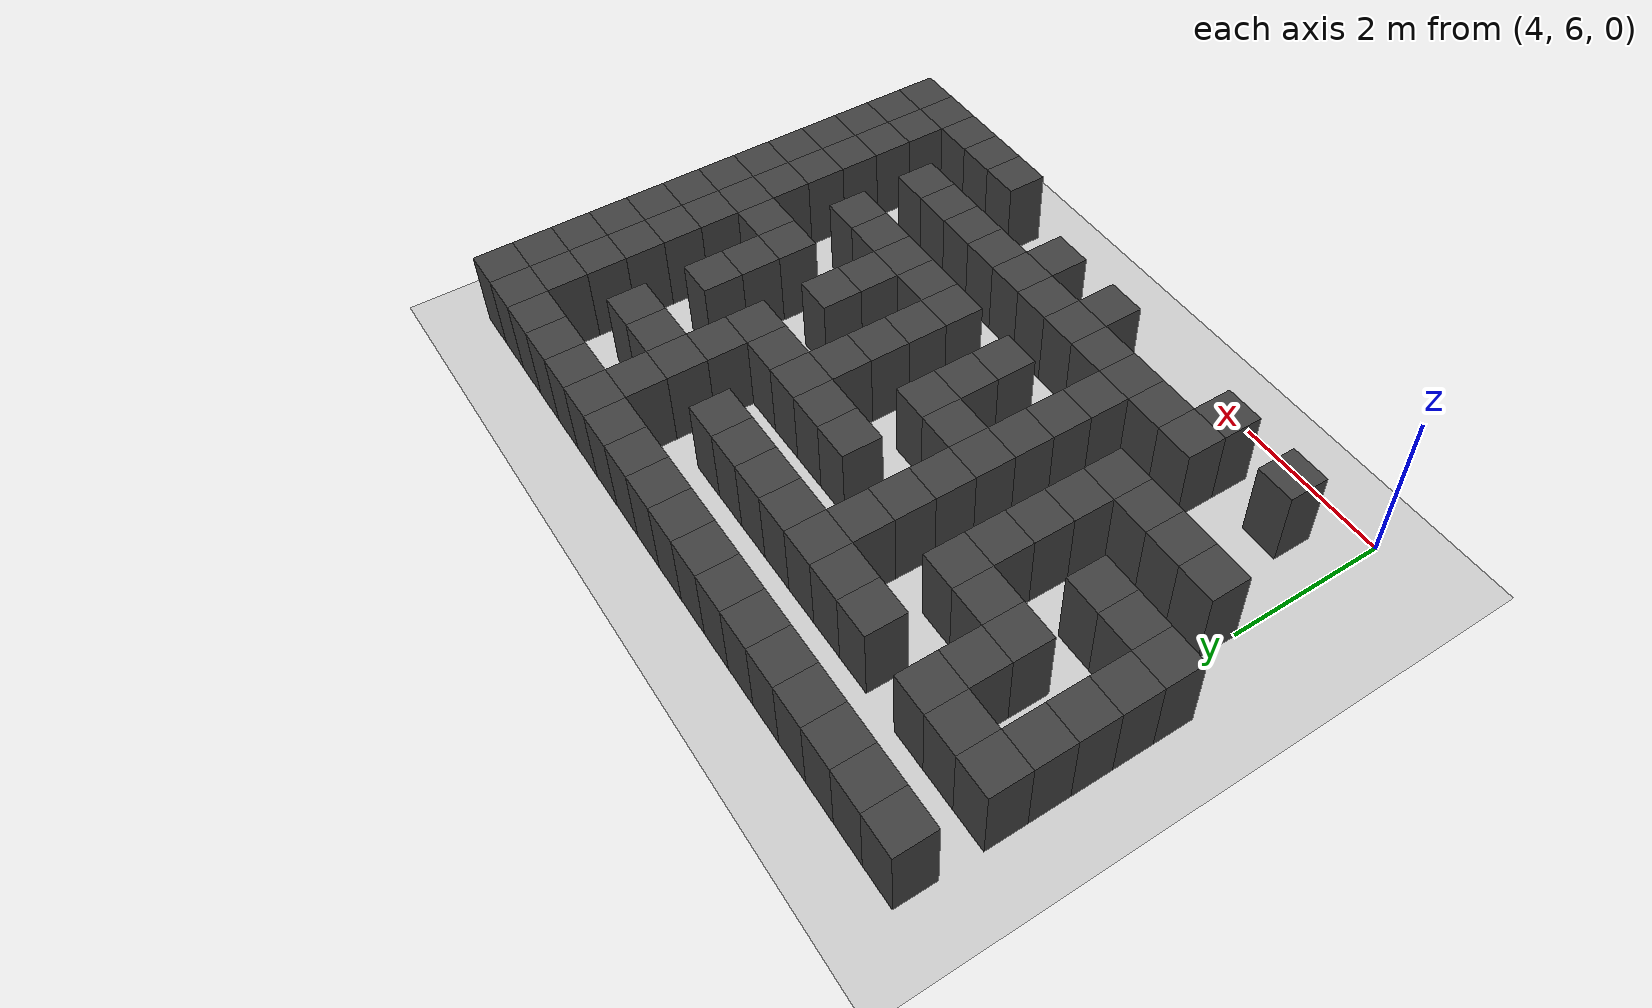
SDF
<sdf version="1.7">
 <world name="map_19815">
  <model name="ground_plane">
   <static>true</static>
   <link name="link">
    <collision name="collision">
     <geometry><plane><normal>0 0 1</normal><size>200 200</size></plane></geometry>
    </collision>
    <visual name="visual">
     <geometry><plane><normal>0 0 1</normal><size>200 200</size></plane></geometry>
     <material><ambient>0.8 0.8 0.8 1</ambient><diffuse>0.8 0.8 0.8 1</diffuse></material>
    </visual>
   </link>
  </model>
  <model name="maze_environment">
   <static>true</static>
   <link name="wall_32">
    <pose>3.750 12.250 0.500 0 0 0</pose>
    <collision name="col"><geometry><box><size>0.5 0.5 1.0</size></box></geometry></collision>
    <visual name="vis">
     <geometry><box><size>0.5 0.5 1.0</size></box></geometry>
     <material><ambient>0.15 0.15 0.15 1</ambient><diffuse>0.25 0.25 0.25 1</diffuse></material>
    </visual>
   </link>
   <link name="wall_33">
    <pose>4.250 12.250 0.500 0 0 0</pose>
    <collision name="col"><geometry><box><size>0.5 0.5 1.0</size></box></geometry></collision>
    <visual name="vis">
     <geometry><box><size>0.5 0.5 1.0</size></box></geometry>
     <material><ambient>0.15 0.15 0.15 1</ambient><diffuse>0.25 0.25 0.25 1</diffuse></material>
    </visual>
   </link>
   <link name="wall_34">
    <pose>4.750 12.250 0.500 0 0 0</pose>
    <collision name="col"><geometry><box><size>0.5 0.5 1.0</size></box></geometry></collision>
    <visual name="vis">
     <geometry><box><size>0.5 0.5 1.0</size></box></geometry>
     <material><ambient>0.15 0.15 0.15 1</ambient><diffuse>0.25 0.25 0.25 1</diffuse></material>
    </visual>
   </link>
   <link name="wall_35">
    <pose>5.250 12.250 0.500 0 0 0</pose>
    <collision name="col"><geometry><box><size>0.5 0.5 1.0</size></box></geometry></collision>
    <visual name="vis">
     <geometry><box><size>0.5 0.5 1.0</size></box></geometry>
     <material><ambient>0.15 0.15 0.15 1</ambient><diffuse>0.25 0.25 0.25 1</diffuse></material>
    </visual>
   </link>
   <link name="wall_36">
    <pose>5.750 12.250 0.500 0 0 0</pose>
    <collision name="col"><geometry><box><size>0.5 0.5 1.0</size></box></geometry></collision>
    <visual name="vis">
     <geometry><box><size>0.5 0.5 1.0</size></box></geometry>
     <material><ambient>0.15 0.15 0.15 1</ambient><diffuse>0.25 0.25 0.25 1</diffuse></material>
    </visual>
   </link>
   <link name="wall_37">
    <pose>6.250 12.250 0.500 0 0 0</pose>
    <collision name="col"><geometry><box><size>0.5 0.5 1.0</size></box></geometry></collision>
    <visual name="vis">
     <geometry><box><size>0.5 0.5 1.0</size></box></geometry>
     <material><ambient>0.15 0.15 0.15 1</ambient><diffuse>0.25 0.25 0.25 1</diffuse></material>
    </visual>
   </link>
   <link name="wall_38">
    <pose>6.750 12.250 0.500 0 0 0</pose>
    <collision name="col"><geometry><box><size>0.5 0.5 1.0</size></box></geometry></collision>
    <visual name="vis">
     <geometry><box><size>0.5 0.5 1.0</size></box></geometry>
     <material><ambient>0.15 0.15 0.15 1</ambient><diffuse>0.25 0.25 0.25 1</diffuse></material>
    </visual>
   </link>
   <link name="wall_39">
    <pose>7.250 12.250 0.500 0 0 0</pose>
    <collision name="col"><geometry><box><size>0.5 0.5 1.0</size></box></geometry></collision>
    <visual name="vis">
     <geometry><box><size>0.5 0.5 1.0</size></box></geometry>
     <material><ambient>0.15 0.15 0.15 1</ambient><diffuse>0.25 0.25 0.25 1</diffuse></material>
    </visual>
   </link>
   <link name="wall_40">
    <pose>7.750 12.250 0.500 0 0 0</pose>
    <collision name="col"><geometry><box><size>0.5 0.5 1.0</size></box></geometry></collision>
    <visual name="vis">
     <geometry><box><size>0.5 0.5 1.0</size></box></geometry>
     <material><ambient>0.15 0.15 0.15 1</ambient><diffuse>0.25 0.25 0.25 1</diffuse></material>
    </visual>
   </link>
   <link name="wall_41">
    <pose>8.250 12.250 0.500 0 0 0</pose>
    <collision name="col"><geometry><box><size>0.5 0.5 1.0</size></box></geometry></collision>
    <visual name="vis">
     <geometry><box><size>0.5 0.5 1.0</size></box></geometry>
     <material><ambient>0.15 0.15 0.15 1</ambient><diffuse>0.25 0.25 0.25 1</diffuse></material>
    </visual>
   </link>
   <link name="wall_42">
    <pose>8.750 12.250 0.500 0 0 0</pose>
    <collision name="col"><geometry><box><size>0.5 0.5 1.0</size></box></geometry></collision>
    <visual name="vis">
     <geometry><box><size>0.5 0.5 1.0</size></box></geometry>
     <material><ambient>0.15 0.15 0.15 1</ambient><diffuse>0.25 0.25 0.25 1</diffuse></material>
    </visual>
   </link>
   <link name="wall_43">
    <pose>9.250 12.250 0.500 0 0 0</pose>
    <collision name="col"><geometry><box><size>0.5 0.5 1.0</size></box></geometry></collision>
    <visual name="vis">
     <geometry><box><size>0.5 0.5 1.0</size></box></geometry>
     <material><ambient>0.15 0.15 0.15 1</ambient><diffuse>0.25 0.25 0.25 1</diffuse></material>
    </visual>
   </link>
   <link name="wall_44">
    <pose>9.750 12.250 0.500 0 0 0</pose>
    <collision name="col"><geometry><box><size>0.5 0.5 1.0</size></box></geometry></collision>
    <visual name="vis">
     <geometry><box><size>0.5 0.5 1.0</size></box></geometry>
     <material><ambient>0.15 0.15 0.15 1</ambient><diffuse>0.25 0.25 0.25 1</diffuse></material>
    </visual>
   </link>
   <link name="wall_45">
    <pose>10.250 12.250 0.500 0 0 0</pose>
    <collision name="col"><geometry><box><size>0.5 0.5 1.0</size></box></geometry></collision>
    <visual name="vis">
     <geometry><box><size>0.5 0.5 1.0</size></box></geometry>
     <material><ambient>0.15 0.15 0.15 1</ambient><diffuse>0.25 0.25 0.25 1</diffuse></material>
    </visual>
   </link>
   <link name="wall_46">
    <pose>10.750 12.250 0.500 0 0 0</pose>
    <collision name="col"><geometry><box><size>0.5 0.5 1.0</size></box></geometry></collision>
    <visual name="vis">
     <geometry><box><size>0.5 0.5 1.0</size></box></geometry>
     <material><ambient>0.15 0.15 0.15 1</ambient><diffuse>0.25 0.25 0.25 1</diffuse></material>
    </visual>
   </link>
   <link name="wall_47">
    <pose>11.250 12.250 0.500 0 0 0</pose>
    <collision name="col"><geometry><box><size>0.5 0.5 1.0</size></box></geometry></collision>
    <visual name="vis">
     <geometry><box><size>0.5 0.5 1.0</size></box></geometry>
     <material><ambient>0.15 0.15 0.15 1</ambient><diffuse>0.25 0.25 0.25 1</diffuse></material>
    </visual>
   </link>
   <link name="wall_48">
    <pose>11.750 12.250 0.500 0 0 0</pose>
    <collision name="col"><geometry><box><size>0.5 0.5 1.0</size></box></geometry></collision>
    <visual name="vis">
     <geometry><box><size>0.5 0.5 1.0</size></box></geometry>
     <material><ambient>0.15 0.15 0.15 1</ambient><diffuse>0.25 0.25 0.25 1</diffuse></material>
    </visual>
   </link>
   <link name="wall_49">
    <pose>12.250 12.250 0.500 0 0 0</pose>
    <collision name="col"><geometry><box><size>0.5 0.5 1.0</size></box></geometry></collision>
    <visual name="vis">
     <geometry><box><size>0.5 0.5 1.0</size></box></geometry>
     <material><ambient>0.15 0.15 0.15 1</ambient><diffuse>0.25 0.25 0.25 1</diffuse></material>
    </visual>
   </link>
   <link name="wall_57">
    <pose>9.750 11.750 0.500 0 0 0</pose>
    <collision name="col"><geometry><box><size>0.5 0.5 1.0</size></box></geometry></collision>
    <visual name="vis">
     <geometry><box><size>0.5 0.5 1.0</size></box></geometry>
     <material><ambient>0.15 0.15 0.15 1</ambient><diffuse>0.25 0.25 0.25 1</diffuse></material>
    </visual>
   </link>
   <link name="wall_58">
    <pose>11.750 11.750 0.500 0 0 0</pose>
    <collision name="col"><geometry><box><size>0.5 0.5 1.0</size></box></geometry></collision>
    <visual name="vis">
     <geometry><box><size>0.5 0.5 1.0</size></box></geometry>
     <material><ambient>0.15 0.15 0.15 1</ambient><diffuse>0.25 0.25 0.25 1</diffuse></material>
    </visual>
   </link>
   <link name="wall_59">
    <pose>12.250 11.750 0.500 0 0 0</pose>
    <collision name="col"><geometry><box><size>0.5 0.5 1.0</size></box></geometry></collision>
    <visual name="vis">
     <geometry><box><size>0.5 0.5 1.0</size></box></geometry>
     <material><ambient>0.15 0.15 0.15 1</ambient><diffuse>0.25 0.25 0.25 1</diffuse></material>
    </visual>
   </link>
   <link name="wall_79">
    <pose>3.750 11.250 0.500 0 0 0</pose>
    <collision name="col"><geometry><box><size>0.5 0.5 1.0</size></box></geometry></collision>
    <visual name="vis">
     <geometry><box><size>0.5 0.5 1.0</size></box></geometry>
     <material><ambient>0.15 0.15 0.15 1</ambient><diffuse>0.25 0.25 0.25 1</diffuse></material>
    </visual>
   </link>
   <link name="wall_80">
    <pose>4.250 11.250 0.500 0 0 0</pose>
    <collision name="col"><geometry><box><size>0.5 0.5 1.0</size></box></geometry></collision>
    <visual name="vis">
     <geometry><box><size>0.5 0.5 1.0</size></box></geometry>
     <material><ambient>0.15 0.15 0.15 1</ambient><diffuse>0.25 0.25 0.25 1</diffuse></material>
    </visual>
   </link>
   <link name="wall_81">
    <pose>4.750 11.250 0.500 0 0 0</pose>
    <collision name="col"><geometry><box><size>0.5 0.5 1.0</size></box></geometry></collision>
    <visual name="vis">
     <geometry><box><size>0.5 0.5 1.0</size></box></geometry>
     <material><ambient>0.15 0.15 0.15 1</ambient><diffuse>0.25 0.25 0.25 1</diffuse></material>
    </visual>
   </link>
   <link name="wall_82">
    <pose>5.750 11.250 0.500 0 0 0</pose>
    <collision name="col"><geometry><box><size>0.5 0.5 1.0</size></box></geometry></collision>
    <visual name="vis">
     <geometry><box><size>0.5 0.5 1.0</size></box></geometry>
     <material><ambient>0.15 0.15 0.15 1</ambient><diffuse>0.25 0.25 0.25 1</diffuse></material>
    </visual>
   </link>
   <link name="wall_83">
    <pose>6.250 11.250 0.500 0 0 0</pose>
    <collision name="col"><geometry><box><size>0.5 0.5 1.0</size></box></geometry></collision>
    <visual name="vis">
     <geometry><box><size>0.5 0.5 1.0</size></box></geometry>
     <material><ambient>0.15 0.15 0.15 1</ambient><diffuse>0.25 0.25 0.25 1</diffuse></material>
    </visual>
   </link>
   <link name="wall_84">
    <pose>6.750 11.250 0.500 0 0 0</pose>
    <collision name="col"><geometry><box><size>0.5 0.5 1.0</size></box></geometry></collision>
    <visual name="vis">
     <geometry><box><size>0.5 0.5 1.0</size></box></geometry>
     <material><ambient>0.15 0.15 0.15 1</ambient><diffuse>0.25 0.25 0.25 1</diffuse></material>
    </visual>
   </link>
   <link name="wall_85">
    <pose>7.250 11.250 0.500 0 0 0</pose>
    <collision name="col"><geometry><box><size>0.5 0.5 1.0</size></box></geometry></collision>
    <visual name="vis">
     <geometry><box><size>0.5 0.5 1.0</size></box></geometry>
     <material><ambient>0.15 0.15 0.15 1</ambient><diffuse>0.25 0.25 0.25 1</diffuse></material>
    </visual>
   </link>
   <link name="wall_86">
    <pose>7.750 11.250 0.500 0 0 0</pose>
    <collision name="col"><geometry><box><size>0.5 0.5 1.0</size></box></geometry></collision>
    <visual name="vis">
     <geometry><box><size>0.5 0.5 1.0</size></box></geometry>
     <material><ambient>0.15 0.15 0.15 1</ambient><diffuse>0.25 0.25 0.25 1</diffuse></material>
    </visual>
   </link>
   <link name="wall_87">
    <pose>8.250 11.250 0.500 0 0 0</pose>
    <collision name="col"><geometry><box><size>0.5 0.5 1.0</size></box></geometry></collision>
    <visual name="vis">
     <geometry><box><size>0.5 0.5 1.0</size></box></geometry>
     <material><ambient>0.15 0.15 0.15 1</ambient><diffuse>0.25 0.25 0.25 1</diffuse></material>
    </visual>
   </link>
   <link name="wall_88">
    <pose>8.750 11.250 0.500 0 0 0</pose>
    <collision name="col"><geometry><box><size>0.5 0.5 1.0</size></box></geometry></collision>
    <visual name="vis">
     <geometry><box><size>0.5 0.5 1.0</size></box></geometry>
     <material><ambient>0.15 0.15 0.15 1</ambient><diffuse>0.25 0.25 0.25 1</diffuse></material>
    </visual>
   </link>
   <link name="wall_89">
    <pose>9.750 11.250 0.500 0 0 0</pose>
    <collision name="col"><geometry><box><size>0.5 0.5 1.0</size></box></geometry></collision>
    <visual name="vis">
     <geometry><box><size>0.5 0.5 1.0</size></box></geometry>
     <material><ambient>0.15 0.15 0.15 1</ambient><diffuse>0.25 0.25 0.25 1</diffuse></material>
    </visual>
   </link>
   <link name="wall_90">
    <pose>10.250 11.250 0.500 0 0 0</pose>
    <collision name="col"><geometry><box><size>0.5 0.5 1.0</size></box></geometry></collision>
    <visual name="vis">
     <geometry><box><size>0.5 0.5 1.0</size></box></geometry>
     <material><ambient>0.15 0.15 0.15 1</ambient><diffuse>0.25 0.25 0.25 1</diffuse></material>
    </visual>
   </link>
   <link name="wall_91">
    <pose>10.750 11.250 0.500 0 0 0</pose>
    <collision name="col"><geometry><box><size>0.5 0.5 1.0</size></box></geometry></collision>
    <visual name="vis">
     <geometry><box><size>0.5 0.5 1.0</size></box></geometry>
     <material><ambient>0.15 0.15 0.15 1</ambient><diffuse>0.25 0.25 0.25 1</diffuse></material>
    </visual>
   </link>
   <link name="wall_92">
    <pose>11.750 11.250 0.500 0 0 0</pose>
    <collision name="col"><geometry><box><size>0.5 0.5 1.0</size></box></geometry></collision>
    <visual name="vis">
     <geometry><box><size>0.5 0.5 1.0</size></box></geometry>
     <material><ambient>0.15 0.15 0.15 1</ambient><diffuse>0.25 0.25 0.25 1</diffuse></material>
    </visual>
   </link>
   <link name="wall_93">
    <pose>12.250 11.250 0.500 0 0 0</pose>
    <collision name="col"><geometry><box><size>0.5 0.5 1.0</size></box></geometry></collision>
    <visual name="vis">
     <geometry><box><size>0.5 0.5 1.0</size></box></geometry>
     <material><ambient>0.15 0.15 0.15 1</ambient><diffuse>0.25 0.25 0.25 1</diffuse></material>
    </visual>
   </link>
   <link name="wall_105">
    <pose>3.750 10.750 0.500 0 0 0</pose>
    <collision name="col"><geometry><box><size>0.5 0.5 1.0</size></box></geometry></collision>
    <visual name="vis">
     <geometry><box><size>0.5 0.5 1.0</size></box></geometry>
     <material><ambient>0.15 0.15 0.15 1</ambient><diffuse>0.25 0.25 0.25 1</diffuse></material>
    </visual>
   </link>
   <link name="wall_106">
    <pose>4.750 10.750 0.500 0 0 0</pose>
    <collision name="col"><geometry><box><size>0.5 0.5 1.0</size></box></geometry></collision>
    <visual name="vis">
     <geometry><box><size>0.5 0.5 1.0</size></box></geometry>
     <material><ambient>0.15 0.15 0.15 1</ambient><diffuse>0.25 0.25 0.25 1</diffuse></material>
    </visual>
   </link>
   <link name="wall_107">
    <pose>6.750 10.750 0.500 0 0 0</pose>
    <collision name="col"><geometry><box><size>0.5 0.5 1.0</size></box></geometry></collision>
    <visual name="vis">
     <geometry><box><size>0.5 0.5 1.0</size></box></geometry>
     <material><ambient>0.15 0.15 0.15 1</ambient><diffuse>0.25 0.25 0.25 1</diffuse></material>
    </visual>
   </link>
   <link name="wall_108">
    <pose>9.750 10.750 0.500 0 0 0</pose>
    <collision name="col"><geometry><box><size>0.5 0.5 1.0</size></box></geometry></collision>
    <visual name="vis">
     <geometry><box><size>0.5 0.5 1.0</size></box></geometry>
     <material><ambient>0.15 0.15 0.15 1</ambient><diffuse>0.25 0.25 0.25 1</diffuse></material>
    </visual>
   </link>
   <link name="wall_109">
    <pose>11.750 10.750 0.500 0 0 0</pose>
    <collision name="col"><geometry><box><size>0.5 0.5 1.0</size></box></geometry></collision>
    <visual name="vis">
     <geometry><box><size>0.5 0.5 1.0</size></box></geometry>
     <material><ambient>0.15 0.15 0.15 1</ambient><diffuse>0.25 0.25 0.25 1</diffuse></material>
    </visual>
   </link>
   <link name="wall_110">
    <pose>12.250 10.750 0.500 0 0 0</pose>
    <collision name="col"><geometry><box><size>0.5 0.5 1.0</size></box></geometry></collision>
    <visual name="vis">
     <geometry><box><size>0.5 0.5 1.0</size></box></geometry>
     <material><ambient>0.15 0.15 0.15 1</ambient><diffuse>0.25 0.25 0.25 1</diffuse></material>
    </visual>
   </link>
   <link name="wall_133">
    <pose>3.750 10.250 0.500 0 0 0</pose>
    <collision name="col"><geometry><box><size>0.5 0.5 1.0</size></box></geometry></collision>
    <visual name="vis">
     <geometry><box><size>0.5 0.5 1.0</size></box></geometry>
     <material><ambient>0.15 0.15 0.15 1</ambient><diffuse>0.25 0.25 0.25 1</diffuse></material>
    </visual>
   </link>
   <link name="wall_134">
    <pose>4.750 10.250 0.500 0 0 0</pose>
    <collision name="col"><geometry><box><size>0.5 0.5 1.0</size></box></geometry></collision>
    <visual name="vis">
     <geometry><box><size>0.5 0.5 1.0</size></box></geometry>
     <material><ambient>0.15 0.15 0.15 1</ambient><diffuse>0.25 0.25 0.25 1</diffuse></material>
    </visual>
   </link>
   <link name="wall_135">
    <pose>5.250 10.250 0.500 0 0 0</pose>
    <collision name="col"><geometry><box><size>0.5 0.5 1.0</size></box></geometry></collision>
    <visual name="vis">
     <geometry><box><size>0.5 0.5 1.0</size></box></geometry>
     <material><ambient>0.15 0.15 0.15 1</ambient><diffuse>0.25 0.25 0.25 1</diffuse></material>
    </visual>
   </link>
   <link name="wall_136">
    <pose>5.750 10.250 0.500 0 0 0</pose>
    <collision name="col"><geometry><box><size>0.5 0.5 1.0</size></box></geometry></collision>
    <visual name="vis">
     <geometry><box><size>0.5 0.5 1.0</size></box></geometry>
     <material><ambient>0.15 0.15 0.15 1</ambient><diffuse>0.25 0.25 0.25 1</diffuse></material>
    </visual>
   </link>
   <link name="wall_137">
    <pose>6.750 10.250 0.500 0 0 0</pose>
    <collision name="col"><geometry><box><size>0.5 0.5 1.0</size></box></geometry></collision>
    <visual name="vis">
     <geometry><box><size>0.5 0.5 1.0</size></box></geometry>
     <material><ambient>0.15 0.15 0.15 1</ambient><diffuse>0.25 0.25 0.25 1</diffuse></material>
    </visual>
   </link>
   <link name="wall_138">
    <pose>7.750 10.250 0.500 0 0 0</pose>
    <collision name="col"><geometry><box><size>0.5 0.5 1.0</size></box></geometry></collision>
    <visual name="vis">
     <geometry><box><size>0.5 0.5 1.0</size></box></geometry>
     <material><ambient>0.15 0.15 0.15 1</ambient><diffuse>0.25 0.25 0.25 1</diffuse></material>
    </visual>
   </link>
   <link name="wall_139">
    <pose>8.250 10.250 0.500 0 0 0</pose>
    <collision name="col"><geometry><box><size>0.5 0.5 1.0</size></box></geometry></collision>
    <visual name="vis">
     <geometry><box><size>0.5 0.5 1.0</size></box></geometry>
     <material><ambient>0.15 0.15 0.15 1</ambient><diffuse>0.25 0.25 0.25 1</diffuse></material>
    </visual>
   </link>
   <link name="wall_140">
    <pose>8.750 10.250 0.500 0 0 0</pose>
    <collision name="col"><geometry><box><size>0.5 0.5 1.0</size></box></geometry></collision>
    <visual name="vis">
     <geometry><box><size>0.5 0.5 1.0</size></box></geometry>
     <material><ambient>0.15 0.15 0.15 1</ambient><diffuse>0.25 0.25 0.25 1</diffuse></material>
    </visual>
   </link>
   <link name="wall_141">
    <pose>9.250 10.250 0.500 0 0 0</pose>
    <collision name="col"><geometry><box><size>0.5 0.5 1.0</size></box></geometry></collision>
    <visual name="vis">
     <geometry><box><size>0.5 0.5 1.0</size></box></geometry>
     <material><ambient>0.15 0.15 0.15 1</ambient><diffuse>0.25 0.25 0.25 1</diffuse></material>
    </visual>
   </link>
   <link name="wall_142">
    <pose>9.750 10.250 0.500 0 0 0</pose>
    <collision name="col"><geometry><box><size>0.5 0.5 1.0</size></box></geometry></collision>
    <visual name="vis">
     <geometry><box><size>0.5 0.5 1.0</size></box></geometry>
     <material><ambient>0.15 0.15 0.15 1</ambient><diffuse>0.25 0.25 0.25 1</diffuse></material>
    </visual>
   </link>
   <link name="wall_143">
    <pose>10.750 10.250 0.500 0 0 0</pose>
    <collision name="col"><geometry><box><size>0.5 0.5 1.0</size></box></geometry></collision>
    <visual name="vis">
     <geometry><box><size>0.5 0.5 1.0</size></box></geometry>
     <material><ambient>0.15 0.15 0.15 1</ambient><diffuse>0.25 0.25 0.25 1</diffuse></material>
    </visual>
   </link>
   <link name="wall_144">
    <pose>11.750 10.250 0.500 0 0 0</pose>
    <collision name="col"><geometry><box><size>0.5 0.5 1.0</size></box></geometry></collision>
    <visual name="vis">
     <geometry><box><size>0.5 0.5 1.0</size></box></geometry>
     <material><ambient>0.15 0.15 0.15 1</ambient><diffuse>0.25 0.25 0.25 1</diffuse></material>
    </visual>
   </link>
   <link name="wall_145">
    <pose>12.250 10.250 0.500 0 0 0</pose>
    <collision name="col"><geometry><box><size>0.5 0.5 1.0</size></box></geometry></collision>
    <visual name="vis">
     <geometry><box><size>0.5 0.5 1.0</size></box></geometry>
     <material><ambient>0.15 0.15 0.15 1</ambient><diffuse>0.25 0.25 0.25 1</diffuse></material>
    </visual>
   </link>
   <link name="wall_154">
    <pose>3.750 9.750 0.500 0 0 0</pose>
    <collision name="col"><geometry><box><size>0.5 0.5 1.0</size></box></geometry></collision>
    <visual name="vis">
     <geometry><box><size>0.5 0.5 1.0</size></box></geometry>
     <material><ambient>0.15 0.15 0.15 1</ambient><diffuse>0.25 0.25 0.25 1</diffuse></material>
    </visual>
   </link>
   <link name="wall_155">
    <pose>5.750 9.750 0.500 0 0 0</pose>
    <collision name="col"><geometry><box><size>0.5 0.5 1.0</size></box></geometry></collision>
    <visual name="vis">
     <geometry><box><size>0.5 0.5 1.0</size></box></geometry>
     <material><ambient>0.15 0.15 0.15 1</ambient><diffuse>0.25 0.25 0.25 1</diffuse></material>
    </visual>
   </link>
   <link name="wall_156">
    <pose>6.750 9.750 0.500 0 0 0</pose>
    <collision name="col"><geometry><box><size>0.5 0.5 1.0</size></box></geometry></collision>
    <visual name="vis">
     <geometry><box><size>0.5 0.5 1.0</size></box></geometry>
     <material><ambient>0.15 0.15 0.15 1</ambient><diffuse>0.25 0.25 0.25 1</diffuse></material>
    </visual>
   </link>
   <link name="wall_157">
    <pose>8.750 9.750 0.500 0 0 0</pose>
    <collision name="col"><geometry><box><size>0.5 0.5 1.0</size></box></geometry></collision>
    <visual name="vis">
     <geometry><box><size>0.5 0.5 1.0</size></box></geometry>
     <material><ambient>0.15 0.15 0.15 1</ambient><diffuse>0.25 0.25 0.25 1</diffuse></material>
    </visual>
   </link>
   <link name="wall_158">
    <pose>10.750 9.750 0.500 0 0 0</pose>
    <collision name="col"><geometry><box><size>0.5 0.5 1.0</size></box></geometry></collision>
    <visual name="vis">
     <geometry><box><size>0.5 0.5 1.0</size></box></geometry>
     <material><ambient>0.15 0.15 0.15 1</ambient><diffuse>0.25 0.25 0.25 1</diffuse></material>
    </visual>
   </link>
   <link name="wall_159">
    <pose>11.750 9.750 0.500 0 0 0</pose>
    <collision name="col"><geometry><box><size>0.5 0.5 1.0</size></box></geometry></collision>
    <visual name="vis">
     <geometry><box><size>0.5 0.5 1.0</size></box></geometry>
     <material><ambient>0.15 0.15 0.15 1</ambient><diffuse>0.25 0.25 0.25 1</diffuse></material>
    </visual>
   </link>
   <link name="wall_160">
    <pose>12.250 9.750 0.500 0 0 0</pose>
    <collision name="col"><geometry><box><size>0.5 0.5 1.0</size></box></geometry></collision>
    <visual name="vis">
     <geometry><box><size>0.5 0.5 1.0</size></box></geometry>
     <material><ambient>0.15 0.15 0.15 1</ambient><diffuse>0.25 0.25 0.25 1</diffuse></material>
    </visual>
   </link>
   <link name="wall_187">
    <pose>3.750 9.250 0.500 0 0 0</pose>
    <collision name="col"><geometry><box><size>0.5 0.5 1.0</size></box></geometry></collision>
    <visual name="vis">
     <geometry><box><size>0.5 0.5 1.0</size></box></geometry>
     <material><ambient>0.15 0.15 0.15 1</ambient><diffuse>0.25 0.25 0.25 1</diffuse></material>
    </visual>
   </link>
   <link name="wall_188">
    <pose>4.250 9.250 0.500 0 0 0</pose>
    <collision name="col"><geometry><box><size>0.5 0.5 1.0</size></box></geometry></collision>
    <visual name="vis">
     <geometry><box><size>0.5 0.5 1.0</size></box></geometry>
     <material><ambient>0.15 0.15 0.15 1</ambient><diffuse>0.25 0.25 0.25 1</diffuse></material>
    </visual>
   </link>
   <link name="wall_189">
    <pose>4.750 9.250 0.500 0 0 0</pose>
    <collision name="col"><geometry><box><size>0.5 0.5 1.0</size></box></geometry></collision>
    <visual name="vis">
     <geometry><box><size>0.5 0.5 1.0</size></box></geometry>
     <material><ambient>0.15 0.15 0.15 1</ambient><diffuse>0.25 0.25 0.25 1</diffuse></material>
    </visual>
   </link>
   <link name="wall_190">
    <pose>5.750 9.250 0.500 0 0 0</pose>
    <collision name="col"><geometry><box><size>0.5 0.5 1.0</size></box></geometry></collision>
    <visual name="vis">
     <geometry><box><size>0.5 0.5 1.0</size></box></geometry>
     <material><ambient>0.15 0.15 0.15 1</ambient><diffuse>0.25 0.25 0.25 1</diffuse></material>
    </visual>
   </link>
   <link name="wall_191">
    <pose>6.750 9.250 0.500 0 0 0</pose>
    <collision name="col"><geometry><box><size>0.5 0.5 1.0</size></box></geometry></collision>
    <visual name="vis">
     <geometry><box><size>0.5 0.5 1.0</size></box></geometry>
     <material><ambient>0.15 0.15 0.15 1</ambient><diffuse>0.25 0.25 0.25 1</diffuse></material>
    </visual>
   </link>
   <link name="wall_192">
    <pose>7.250 9.250 0.500 0 0 0</pose>
    <collision name="col"><geometry><box><size>0.5 0.5 1.0</size></box></geometry></collision>
    <visual name="vis">
     <geometry><box><size>0.5 0.5 1.0</size></box></geometry>
     <material><ambient>0.15 0.15 0.15 1</ambient><diffuse>0.25 0.25 0.25 1</diffuse></material>
    </visual>
   </link>
   <link name="wall_193">
    <pose>7.750 9.250 0.500 0 0 0</pose>
    <collision name="col"><geometry><box><size>0.5 0.5 1.0</size></box></geometry></collision>
    <visual name="vis">
     <geometry><box><size>0.5 0.5 1.0</size></box></geometry>
     <material><ambient>0.15 0.15 0.15 1</ambient><diffuse>0.25 0.25 0.25 1</diffuse></material>
    </visual>
   </link>
   <link name="wall_194">
    <pose>8.750 9.250 0.500 0 0 0</pose>
    <collision name="col"><geometry><box><size>0.5 0.5 1.0</size></box></geometry></collision>
    <visual name="vis">
     <geometry><box><size>0.5 0.5 1.0</size></box></geometry>
     <material><ambient>0.15 0.15 0.15 1</ambient><diffuse>0.25 0.25 0.25 1</diffuse></material>
    </visual>
   </link>
   <link name="wall_195">
    <pose>9.750 9.250 0.500 0 0 0</pose>
    <collision name="col"><geometry><box><size>0.5 0.5 1.0</size></box></geometry></collision>
    <visual name="vis">
     <geometry><box><size>0.5 0.5 1.0</size></box></geometry>
     <material><ambient>0.15 0.15 0.15 1</ambient><diffuse>0.25 0.25 0.25 1</diffuse></material>
    </visual>
   </link>
   <link name="wall_196">
    <pose>10.750 9.250 0.500 0 0 0</pose>
    <collision name="col"><geometry><box><size>0.5 0.5 1.0</size></box></geometry></collision>
    <visual name="vis">
     <geometry><box><size>0.5 0.5 1.0</size></box></geometry>
     <material><ambient>0.15 0.15 0.15 1</ambient><diffuse>0.25 0.25 0.25 1</diffuse></material>
    </visual>
   </link>
   <link name="wall_197">
    <pose>11.250 9.250 0.500 0 0 0</pose>
    <collision name="col"><geometry><box><size>0.5 0.5 1.0</size></box></geometry></collision>
    <visual name="vis">
     <geometry><box><size>0.5 0.5 1.0</size></box></geometry>
     <material><ambient>0.15 0.15 0.15 1</ambient><diffuse>0.25 0.25 0.25 1</diffuse></material>
    </visual>
   </link>
   <link name="wall_198">
    <pose>11.750 9.250 0.500 0 0 0</pose>
    <collision name="col"><geometry><box><size>0.5 0.5 1.0</size></box></geometry></collision>
    <visual name="vis">
     <geometry><box><size>0.5 0.5 1.0</size></box></geometry>
     <material><ambient>0.15 0.15 0.15 1</ambient><diffuse>0.25 0.25 0.25 1</diffuse></material>
    </visual>
   </link>
   <link name="wall_199">
    <pose>12.250 9.250 0.500 0 0 0</pose>
    <collision name="col"><geometry><box><size>0.5 0.5 1.0</size></box></geometry></collision>
    <visual name="vis">
     <geometry><box><size>0.5 0.5 1.0</size></box></geometry>
     <material><ambient>0.15 0.15 0.15 1</ambient><diffuse>0.25 0.25 0.25 1</diffuse></material>
    </visual>
   </link>
   <link name="wall_210">
    <pose>5.750 8.750 0.500 0 0 0</pose>
    <collision name="col"><geometry><box><size>0.5 0.5 1.0</size></box></geometry></collision>
    <visual name="vis">
     <geometry><box><size>0.5 0.5 1.0</size></box></geometry>
     <material><ambient>0.15 0.15 0.15 1</ambient><diffuse>0.25 0.25 0.25 1</diffuse></material>
    </visual>
   </link>
   <link name="wall_211">
    <pose>6.750 8.750 0.500 0 0 0</pose>
    <collision name="col"><geometry><box><size>0.5 0.5 1.0</size></box></geometry></collision>
    <visual name="vis">
     <geometry><box><size>0.5 0.5 1.0</size></box></geometry>
     <material><ambient>0.15 0.15 0.15 1</ambient><diffuse>0.25 0.25 0.25 1</diffuse></material>
    </visual>
   </link>
   <link name="wall_212">
    <pose>7.750 8.750 0.500 0 0 0</pose>
    <collision name="col"><geometry><box><size>0.5 0.5 1.0</size></box></geometry></collision>
    <visual name="vis">
     <geometry><box><size>0.5 0.5 1.0</size></box></geometry>
     <material><ambient>0.15 0.15 0.15 1</ambient><diffuse>0.25 0.25 0.25 1</diffuse></material>
    </visual>
   </link>
   <link name="wall_213">
    <pose>8.750 8.750 0.500 0 0 0</pose>
    <collision name="col"><geometry><box><size>0.5 0.5 1.0</size></box></geometry></collision>
    <visual name="vis">
     <geometry><box><size>0.5 0.5 1.0</size></box></geometry>
     <material><ambient>0.15 0.15 0.15 1</ambient><diffuse>0.25 0.25 0.25 1</diffuse></material>
    </visual>
   </link>
   <link name="wall_214">
    <pose>9.750 8.750 0.500 0 0 0</pose>
    <collision name="col"><geometry><box><size>0.5 0.5 1.0</size></box></geometry></collision>
    <visual name="vis">
     <geometry><box><size>0.5 0.5 1.0</size></box></geometry>
     <material><ambient>0.15 0.15 0.15 1</ambient><diffuse>0.25 0.25 0.25 1</diffuse></material>
    </visual>
   </link>
   <link name="wall_215">
    <pose>11.750 8.750 0.500 0 0 0</pose>
    <collision name="col"><geometry><box><size>0.5 0.5 1.0</size></box></geometry></collision>
    <visual name="vis">
     <geometry><box><size>0.5 0.5 1.0</size></box></geometry>
     <material><ambient>0.15 0.15 0.15 1</ambient><diffuse>0.25 0.25 0.25 1</diffuse></material>
    </visual>
   </link>
   <link name="wall_216">
    <pose>12.250 8.750 0.500 0 0 0</pose>
    <collision name="col"><geometry><box><size>0.5 0.5 1.0</size></box></geometry></collision>
    <visual name="vis">
     <geometry><box><size>0.5 0.5 1.0</size></box></geometry>
     <material><ambient>0.15 0.15 0.15 1</ambient><diffuse>0.25 0.25 0.25 1</diffuse></material>
    </visual>
   </link>
   <link name="wall_238">
    <pose>4.250 8.250 0.500 0 0 0</pose>
    <collision name="col"><geometry><box><size>0.5 0.5 1.0</size></box></geometry></collision>
    <visual name="vis">
     <geometry><box><size>0.5 0.5 1.0</size></box></geometry>
     <material><ambient>0.15 0.15 0.15 1</ambient><diffuse>0.25 0.25 0.25 1</diffuse></material>
    </visual>
   </link>
   <link name="wall_239">
    <pose>4.750 8.250 0.500 0 0 0</pose>
    <collision name="col"><geometry><box><size>0.5 0.5 1.0</size></box></geometry></collision>
    <visual name="vis">
     <geometry><box><size>0.5 0.5 1.0</size></box></geometry>
     <material><ambient>0.15 0.15 0.15 1</ambient><diffuse>0.25 0.25 0.25 1</diffuse></material>
    </visual>
   </link>
   <link name="wall_240">
    <pose>5.250 8.250 0.500 0 0 0</pose>
    <collision name="col"><geometry><box><size>0.5 0.5 1.0</size></box></geometry></collision>
    <visual name="vis">
     <geometry><box><size>0.5 0.5 1.0</size></box></geometry>
     <material><ambient>0.15 0.15 0.15 1</ambient><diffuse>0.25 0.25 0.25 1</diffuse></material>
    </visual>
   </link>
   <link name="wall_241">
    <pose>5.750 8.250 0.500 0 0 0</pose>
    <collision name="col"><geometry><box><size>0.5 0.5 1.0</size></box></geometry></collision>
    <visual name="vis">
     <geometry><box><size>0.5 0.5 1.0</size></box></geometry>
     <material><ambient>0.15 0.15 0.15 1</ambient><diffuse>0.25 0.25 0.25 1</diffuse></material>
    </visual>
   </link>
   <link name="wall_242">
    <pose>6.750 8.250 0.500 0 0 0</pose>
    <collision name="col"><geometry><box><size>0.5 0.5 1.0</size></box></geometry></collision>
    <visual name="vis">
     <geometry><box><size>0.5 0.5 1.0</size></box></geometry>
     <material><ambient>0.15 0.15 0.15 1</ambient><diffuse>0.25 0.25 0.25 1</diffuse></material>
    </visual>
   </link>
   <link name="wall_243">
    <pose>7.750 8.250 0.500 0 0 0</pose>
    <collision name="col"><geometry><box><size>0.5 0.5 1.0</size></box></geometry></collision>
    <visual name="vis">
     <geometry><box><size>0.5 0.5 1.0</size></box></geometry>
     <material><ambient>0.15 0.15 0.15 1</ambient><diffuse>0.25 0.25 0.25 1</diffuse></material>
    </visual>
   </link>
   <link name="wall_244">
    <pose>8.750 8.250 0.500 0 0 0</pose>
    <collision name="col"><geometry><box><size>0.5 0.5 1.0</size></box></geometry></collision>
    <visual name="vis">
     <geometry><box><size>0.5 0.5 1.0</size></box></geometry>
     <material><ambient>0.15 0.15 0.15 1</ambient><diffuse>0.25 0.25 0.25 1</diffuse></material>
    </visual>
   </link>
   <link name="wall_245">
    <pose>9.250 8.250 0.500 0 0 0</pose>
    <collision name="col"><geometry><box><size>0.5 0.5 1.0</size></box></geometry></collision>
    <visual name="vis">
     <geometry><box><size>0.5 0.5 1.0</size></box></geometry>
     <material><ambient>0.15 0.15 0.15 1</ambient><diffuse>0.25 0.25 0.25 1</diffuse></material>
    </visual>
   </link>
   <link name="wall_246">
    <pose>9.750 8.250 0.500 0 0 0</pose>
    <collision name="col"><geometry><box><size>0.5 0.5 1.0</size></box></geometry></collision>
    <visual name="vis">
     <geometry><box><size>0.5 0.5 1.0</size></box></geometry>
     <material><ambient>0.15 0.15 0.15 1</ambient><diffuse>0.25 0.25 0.25 1</diffuse></material>
    </visual>
   </link>
   <link name="wall_247">
    <pose>10.250 8.250 0.500 0 0 0</pose>
    <collision name="col"><geometry><box><size>0.5 0.5 1.0</size></box></geometry></collision>
    <visual name="vis">
     <geometry><box><size>0.5 0.5 1.0</size></box></geometry>
     <material><ambient>0.15 0.15 0.15 1</ambient><diffuse>0.25 0.25 0.25 1</diffuse></material>
    </visual>
   </link>
   <link name="wall_248">
    <pose>10.750 8.250 0.500 0 0 0</pose>
    <collision name="col"><geometry><box><size>0.5 0.5 1.0</size></box></geometry></collision>
    <visual name="vis">
     <geometry><box><size>0.5 0.5 1.0</size></box></geometry>
     <material><ambient>0.15 0.15 0.15 1</ambient><diffuse>0.25 0.25 0.25 1</diffuse></material>
    </visual>
   </link>
   <link name="wall_249">
    <pose>11.750 8.250 0.500 0 0 0</pose>
    <collision name="col"><geometry><box><size>0.5 0.5 1.0</size></box></geometry></collision>
    <visual name="vis">
     <geometry><box><size>0.5 0.5 1.0</size></box></geometry>
     <material><ambient>0.15 0.15 0.15 1</ambient><diffuse>0.25 0.25 0.25 1</diffuse></material>
    </visual>
   </link>
   <link name="wall_250">
    <pose>12.250 8.250 0.500 0 0 0</pose>
    <collision name="col"><geometry><box><size>0.5 0.5 1.0</size></box></geometry></collision>
    <visual name="vis">
     <geometry><box><size>0.5 0.5 1.0</size></box></geometry>
     <material><ambient>0.15 0.15 0.15 1</ambient><diffuse>0.25 0.25 0.25 1</diffuse></material>
    </visual>
   </link>
   <link name="wall_263">
    <pose>6.750 7.750 0.500 0 0 0</pose>
    <collision name="col"><geometry><box><size>0.5 0.5 1.0</size></box></geometry></collision>
    <visual name="vis">
     <geometry><box><size>0.5 0.5 1.0</size></box></geometry>
     <material><ambient>0.15 0.15 0.15 1</ambient><diffuse>0.25 0.25 0.25 1</diffuse></material>
    </visual>
   </link>
   <link name="wall_264">
    <pose>11.750 7.750 0.500 0 0 0</pose>
    <collision name="col"><geometry><box><size>0.5 0.5 1.0</size></box></geometry></collision>
    <visual name="vis">
     <geometry><box><size>0.5 0.5 1.0</size></box></geometry>
     <material><ambient>0.15 0.15 0.15 1</ambient><diffuse>0.25 0.25 0.25 1</diffuse></material>
    </visual>
   </link>
   <link name="wall_265">
    <pose>12.250 7.750 0.500 0 0 0</pose>
    <collision name="col"><geometry><box><size>0.5 0.5 1.0</size></box></geometry></collision>
    <visual name="vis">
     <geometry><box><size>0.5 0.5 1.0</size></box></geometry>
     <material><ambient>0.15 0.15 0.15 1</ambient><diffuse>0.25 0.25 0.25 1</diffuse></material>
    </visual>
   </link>
   <link name="wall_288">
    <pose>5.750 7.250 0.500 0 0 0</pose>
    <collision name="col"><geometry><box><size>0.5 0.5 1.0</size></box></geometry></collision>
    <visual name="vis">
     <geometry><box><size>0.5 0.5 1.0</size></box></geometry>
     <material><ambient>0.15 0.15 0.15 1</ambient><diffuse>0.25 0.25 0.25 1</diffuse></material>
    </visual>
   </link>
   <link name="wall_289">
    <pose>6.250 7.250 0.500 0 0 0</pose>
    <collision name="col"><geometry><box><size>0.5 0.5 1.0</size></box></geometry></collision>
    <visual name="vis">
     <geometry><box><size>0.5 0.5 1.0</size></box></geometry>
     <material><ambient>0.15 0.15 0.15 1</ambient><diffuse>0.25 0.25 0.25 1</diffuse></material>
    </visual>
   </link>
   <link name="wall_290">
    <pose>6.750 7.250 0.500 0 0 0</pose>
    <collision name="col"><geometry><box><size>0.5 0.5 1.0</size></box></geometry></collision>
    <visual name="vis">
     <geometry><box><size>0.5 0.5 1.0</size></box></geometry>
     <material><ambient>0.15 0.15 0.15 1</ambient><diffuse>0.25 0.25 0.25 1</diffuse></material>
    </visual>
   </link>
   <link name="wall_291">
    <pose>7.250 7.250 0.500 0 0 0</pose>
    <collision name="col"><geometry><box><size>0.5 0.5 1.0</size></box></geometry></collision>
    <visual name="vis">
     <geometry><box><size>0.5 0.5 1.0</size></box></geometry>
     <material><ambient>0.15 0.15 0.15 1</ambient><diffuse>0.25 0.25 0.25 1</diffuse></material>
    </visual>
   </link>
   <link name="wall_292">
    <pose>7.750 7.250 0.500 0 0 0</pose>
    <collision name="col"><geometry><box><size>0.5 0.5 1.0</size></box></geometry></collision>
    <visual name="vis">
     <geometry><box><size>0.5 0.5 1.0</size></box></geometry>
     <material><ambient>0.15 0.15 0.15 1</ambient><diffuse>0.25 0.25 0.25 1</diffuse></material>
    </visual>
   </link>
   <link name="wall_293">
    <pose>8.250 7.250 0.500 0 0 0</pose>
    <collision name="col"><geometry><box><size>0.5 0.5 1.0</size></box></geometry></collision>
    <visual name="vis">
     <geometry><box><size>0.5 0.5 1.0</size></box></geometry>
     <material><ambient>0.15 0.15 0.15 1</ambient><diffuse>0.25 0.25 0.25 1</diffuse></material>
    </visual>
   </link>
   <link name="wall_294">
    <pose>8.750 7.250 0.500 0 0 0</pose>
    <collision name="col"><geometry><box><size>0.5 0.5 1.0</size></box></geometry></collision>
    <visual name="vis">
     <geometry><box><size>0.5 0.5 1.0</size></box></geometry>
     <material><ambient>0.15 0.15 0.15 1</ambient><diffuse>0.25 0.25 0.25 1</diffuse></material>
    </visual>
   </link>
   <link name="wall_295">
    <pose>9.250 7.250 0.500 0 0 0</pose>
    <collision name="col"><geometry><box><size>0.5 0.5 1.0</size></box></geometry></collision>
    <visual name="vis">
     <geometry><box><size>0.5 0.5 1.0</size></box></geometry>
     <material><ambient>0.15 0.15 0.15 1</ambient><diffuse>0.25 0.25 0.25 1</diffuse></material>
    </visual>
   </link>
   <link name="wall_296">
    <pose>9.750 7.250 0.500 0 0 0</pose>
    <collision name="col"><geometry><box><size>0.5 0.5 1.0</size></box></geometry></collision>
    <visual name="vis">
     <geometry><box><size>0.5 0.5 1.0</size></box></geometry>
     <material><ambient>0.15 0.15 0.15 1</ambient><diffuse>0.25 0.25 0.25 1</diffuse></material>
    </visual>
   </link>
   <link name="wall_297">
    <pose>10.250 7.250 0.500 0 0 0</pose>
    <collision name="col"><geometry><box><size>0.5 0.5 1.0</size></box></geometry></collision>
    <visual name="vis">
     <geometry><box><size>0.5 0.5 1.0</size></box></geometry>
     <material><ambient>0.15 0.15 0.15 1</ambient><diffuse>0.25 0.25 0.25 1</diffuse></material>
    </visual>
   </link>
   <link name="wall_298">
    <pose>10.750 7.250 0.500 0 0 0</pose>
    <collision name="col"><geometry><box><size>0.5 0.5 1.0</size></box></geometry></collision>
    <visual name="vis">
     <geometry><box><size>0.5 0.5 1.0</size></box></geometry>
     <material><ambient>0.15 0.15 0.15 1</ambient><diffuse>0.25 0.25 0.25 1</diffuse></material>
    </visual>
   </link>
   <link name="wall_299">
    <pose>11.750 7.250 0.500 0 0 0</pose>
    <collision name="col"><geometry><box><size>0.5 0.5 1.0</size></box></geometry></collision>
    <visual name="vis">
     <geometry><box><size>0.5 0.5 1.0</size></box></geometry>
     <material><ambient>0.15 0.15 0.15 1</ambient><diffuse>0.25 0.25 0.25 1</diffuse></material>
    </visual>
   </link>
   <link name="wall_300">
    <pose>12.250 7.250 0.500 0 0 0</pose>
    <collision name="col"><geometry><box><size>0.5 0.5 1.0</size></box></geometry></collision>
    <visual name="vis">
     <geometry><box><size>0.5 0.5 1.0</size></box></geometry>
     <material><ambient>0.15 0.15 0.15 1</ambient><diffuse>0.25 0.25 0.25 1</diffuse></material>
    </visual>
   </link>
   <link name="wall_312">
    <pose>4.750 6.750 0.500 0 0 0</pose>
    <collision name="col"><geometry><box><size>0.5 0.5 1.0</size></box></geometry></collision>
    <visual name="vis">
     <geometry><box><size>0.5 0.5 1.0</size></box></geometry>
     <material><ambient>0.15 0.15 0.15 1</ambient><diffuse>0.25 0.25 0.25 1</diffuse></material>
    </visual>
   </link>
   <link name="wall_313">
    <pose>5.750 6.750 0.500 0 0 0</pose>
    <collision name="col"><geometry><box><size>0.5 0.5 1.0</size></box></geometry></collision>
    <visual name="vis">
     <geometry><box><size>0.5 0.5 1.0</size></box></geometry>
     <material><ambient>0.15 0.15 0.15 1</ambient><diffuse>0.25 0.25 0.25 1</diffuse></material>
    </visual>
   </link>
   <link name="wall_314">
    <pose>7.750 6.750 0.500 0 0 0</pose>
    <collision name="col"><geometry><box><size>0.5 0.5 1.0</size></box></geometry></collision>
    <visual name="vis">
     <geometry><box><size>0.5 0.5 1.0</size></box></geometry>
     <material><ambient>0.15 0.15 0.15 1</ambient><diffuse>0.25 0.25 0.25 1</diffuse></material>
    </visual>
   </link>
   <link name="wall_315">
    <pose>8.750 6.750 0.500 0 0 0</pose>
    <collision name="col"><geometry><box><size>0.5 0.5 1.0</size></box></geometry></collision>
    <visual name="vis">
     <geometry><box><size>0.5 0.5 1.0</size></box></geometry>
     <material><ambient>0.15 0.15 0.15 1</ambient><diffuse>0.25 0.25 0.25 1</diffuse></material>
    </visual>
   </link>
   <link name="wall_316">
    <pose>11.750 6.750 0.500 0 0 0</pose>
    <collision name="col"><geometry><box><size>0.5 0.5 1.0</size></box></geometry></collision>
    <visual name="vis">
     <geometry><box><size>0.5 0.5 1.0</size></box></geometry>
     <material><ambient>0.15 0.15 0.15 1</ambient><diffuse>0.25 0.25 0.25 1</diffuse></material>
    </visual>
   </link>
   <link name="wall_317">
    <pose>12.250 6.750 0.500 0 0 0</pose>
    <collision name="col"><geometry><box><size>0.5 0.5 1.0</size></box></geometry></collision>
    <visual name="vis">
     <geometry><box><size>0.5 0.5 1.0</size></box></geometry>
     <material><ambient>0.15 0.15 0.15 1</ambient><diffuse>0.25 0.25 0.25 1</diffuse></material>
    </visual>
   </link>
   <link name="wall_350">
    <pose>10.250 6.250 0.500 0 0 0</pose>
    <collision name="col"><geometry><box><size>0.5 0.5 1.0</size></box></geometry></collision>
    <visual name="vis">
     <geometry><box><size>0.5 0.5 1.0</size></box></geometry>
     <material><ambient>0.15 0.15 0.15 1</ambient><diffuse>0.25 0.25 0.25 1</diffuse></material>
    </visual>
   </link>
   <link name="wall_351">
    <pose>10.750 6.250 0.500 0 0 0</pose>
    <collision name="col"><geometry><box><size>0.5 0.5 1.0</size></box></geometry></collision>
    <visual name="vis">
     <geometry><box><size>0.5 0.5 1.0</size></box></geometry>
     <material><ambient>0.15 0.15 0.15 1</ambient><diffuse>0.25 0.25 0.25 1</diffuse></material>
    </visual>
   </link>
   <link name="wall_352">
    <pose>11.250 6.250 0.500 0 0 0</pose>
    <collision name="col"><geometry><box><size>0.5 0.5 1.0</size></box></geometry></collision>
    <visual name="vis">
     <geometry><box><size>0.5 0.5 1.0</size></box></geometry>
     <material><ambient>0.15 0.15 0.15 1</ambient><diffuse>0.25 0.25 0.25 1</diffuse></material>
    </visual>
   </link>
   <link name="wall_353">
    <pose>11.750 6.250 0.500 0 0 0</pose>
    <collision name="col"><geometry><box><size>0.5 0.5 1.0</size></box></geometry></collision>
    <visual name="vis">
     <geometry><box><size>0.5 0.5 1.0</size></box></geometry>
     <material><ambient>0.15 0.15 0.15 1</ambient><diffuse>0.25 0.25 0.25 1</diffuse></material>
    </visual>
   </link>
   <link name="wall_354">
    <pose>12.250 6.250 0.500 0 0 0</pose>
    <collision name="col"><geometry><box><size>0.5 0.5 1.0</size></box></geometry></collision>
    <visual name="vis">
     <geometry><box><size>0.5 0.5 1.0</size></box></geometry>
     <material><ambient>0.15 0.15 0.15 1</ambient><diffuse>0.25 0.25 0.25 1</diffuse></material>
    </visual>
   </link>
  </model>
 </world>
</sdf>
